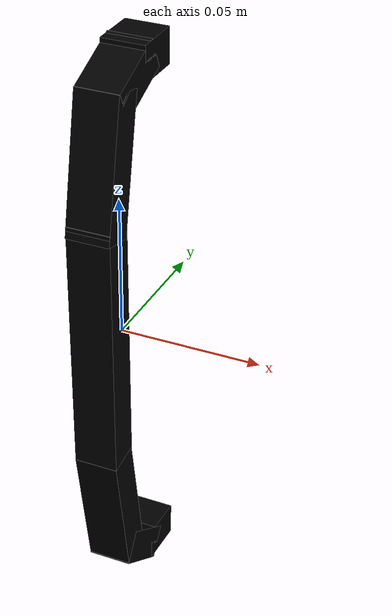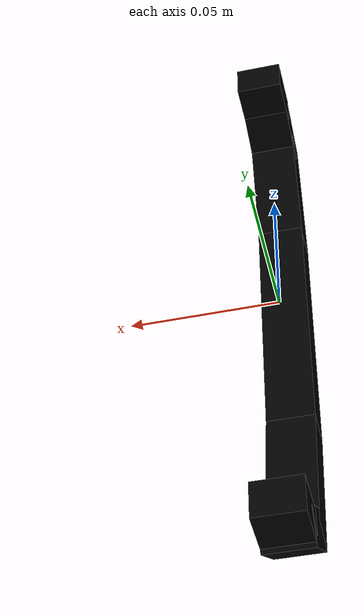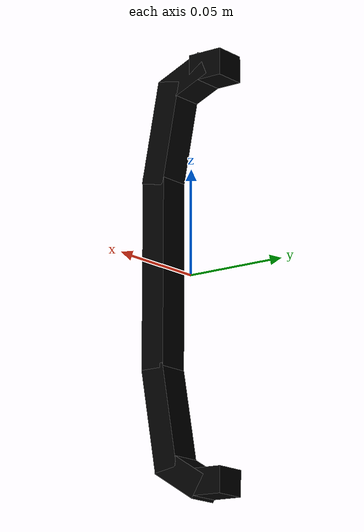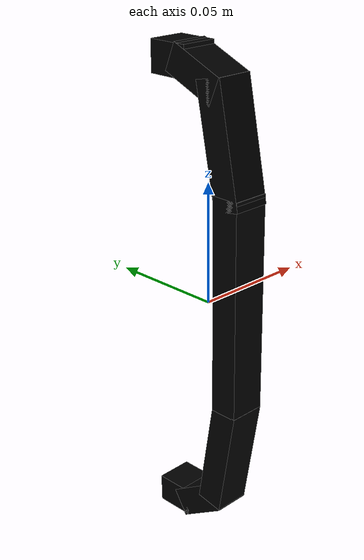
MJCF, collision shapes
<?xml version="1.0" ?>
<mujoco model="model">
    <compiler angle="radian"/>
    <asset>
        <mesh file="visuals/CabinetHandle043.obj" name="mesh"/>
        <texture file="visuals/T_BC001.png" name="tex" type="2d"/>
        <material name="mat" rgba="1 1 1 1.0" texture="tex" shininess="0.4472135901451111" specular="0.3103448502657381"/>
    </asset>
    <default>
        <default class="visual">
            <geom conaffinity="0" contype="0" group="1" type="mesh"/>
        </default>
        <default class="collision">
            <geom group="0" rgba="0 0 0 0"/>
        </default>
        <default class="spawn">
            <geom group="0" rgba="0 0 0 0" contype="0" conaffinity="0"/>
            <site group="0" rgba="0 0 0 0"/>
        </default>
    </default>
    <worldbody>
        <body>
            <body name="object">
                <geom mesh="mesh" type="mesh" solimp="0.998 0.998 0.001" solref="0.001 1" density="100" friction="0.95 0.3 0.1" class="visual" material="mat"/>
                <geom class="collision" type="box" pos="-7.639741909842023e-19 -0.015969404950737953 0.0034406338818371296" size="0.007774855475872755 0.006022720597684383 0.04577995836734772" quat="1.0 0.0 0.0 0.0"/>
                <geom class="collision" type="box" pos="-1.5091763037880955e-17 -0.011884115636348724 0.0679672583937645" size="0.007774855475872755 0.0060227192007005215 0.024288201704621315" quat="0.9952884912490845 -0.09695758670568466 2.152890903454822e-17 4.357184857566874e-24"/>
                <geom class="collision" type="box" pos="1.444767223647164e-17 -0.012093618512153625 -0.06506653130054474" size="0.007774855475872755 0.0060227192007005215 0.024288201704621315" quat="0.9965286254882812 0.08325078338384628 -1.848539061488796e-17 8.05291142382774e-24"/>
                <geom class="collision" type="box" pos="2.0355558298725424e-17 -0.0006757578230462968 -0.09167328476905823" size="0.007774855475872755 0.006022718269377947 0.012194736860692501" quat="0.8756933212280273 0.48286768794059753 -1.0721818485216799e-16 -1.2840199024139214e-23"/>
                <geom class="collision" type="box" pos="2.2495451382342955e-17 0.013256251811981201 -0.09606611728668213" size="0.007774855475872755 0.0060227192007005215 0.008473028428852558" quat="0.7135644555091858 0.7005895972251892 -1.5556216680023355e-16 -2.1735713291217052e-23"/>
                <geom class="collision" type="box" pos="-2.0462057802591626e-17 0.000877154991030693 0.0921529158949852" size="0.007774855475872755 0.0060227192007005215 0.012194737792015076" quat="0.5521039962768555 0.8337752223014832 -1.8513530306710278e-16 -2.107348664938936e-23"/>
                <geom class="collision" type="box" pos="-2.0075610600935428e-17 0.013466737233102322 0.09565690159797668" size="0.007774855475872755 0.00870534684509039 0.006349595729261637" quat="1.0 0.0 0.0 0.0" name="handle_connector"/>
            </body>
        </body>
    </worldbody>
    <actuator/>
</mujoco>
